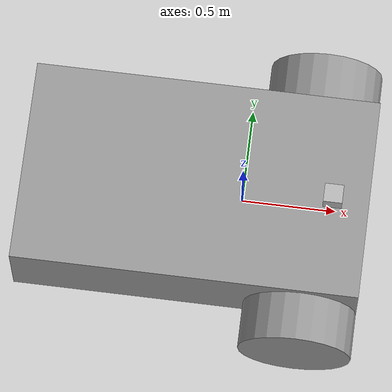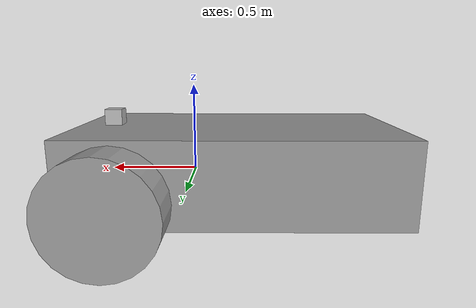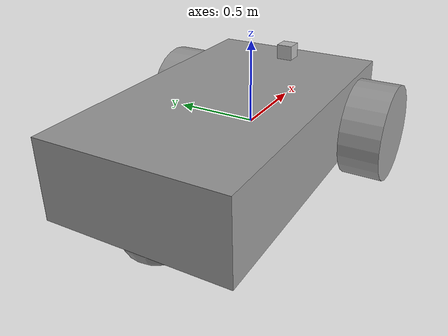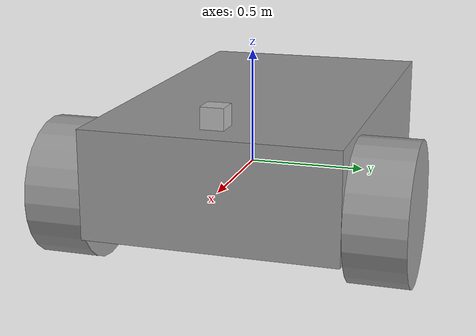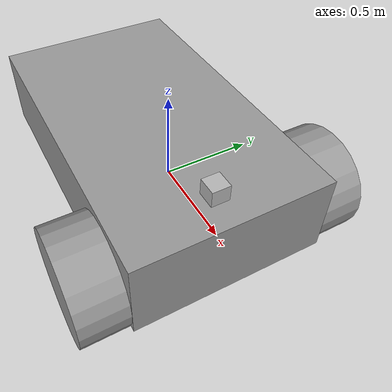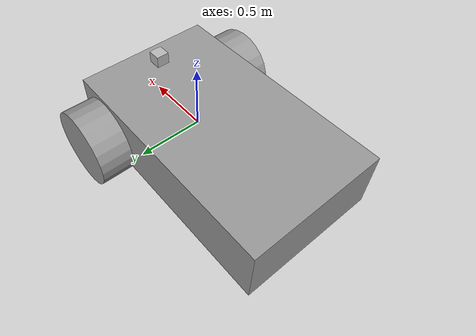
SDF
<?xml version='1.0'?>
<sdf version='1.6'>
  <model name='my_vehicle'>
    <link name='link_2'>
      <pose frame=''>-0.248353 0.003568 0.032739 0 -0 0</pose>
      <inertial>
        <mass>0.926489</mass>
        <inertia>
          <ixx>0.106912</ixx>
          <ixy>0</ixy>
          <ixz>0</ixz>
          <iyy>0.276318</iyy>
          <iyz>0</iyz>
          <izz>0.34938</izz>
        </inertia>
        <pose frame=''>0 0 0 0 -0 0</pose>
      </inertial>
      <gravity>1</gravity>
      <self_collide>0</self_collide>
      <kinematic>0</kinematic>
      <visual name='visual'>
        <pose frame=''>0 0 0 0 -0 0</pose>
        <geometry>
          <box>
            <size>1.83294 1.0796 0.4682</size>
          </box>
        </geometry>
        <material>
          <lighting>1</lighting>
          <script>
            <uri>file://media/materials/scripts/gazebo.material</uri>
            <name>Gazebo/Grey</name>
          </script>
          <ambient>0.3 0.3 0.3 1</ambient>
          <diffuse>0.7 0.7 0.7 1</diffuse>
          <specular>0.01 0.01 0.01 1</specular>
          <emissive>0 0 0 1</emissive>
          <shader type='vertex'>
            <normal_map>__default__</normal_map>
          </shader>
        </material>
        <cast_shadows>1</cast_shadows>
        <transparency>0</transparency>
      </visual>
      <collision name='collision'>
        <laser_retro>0</laser_retro>
        <max_contacts>10</max_contacts>
        <pose frame=''>0 0 0 0 -0 0</pose>
        <geometry>
          <box>
            <size>1.83294 1.0796 0.4682</size>
          </box>
        </geometry>
        <surface>
          <friction>
            <ode>
              <mu>1</mu>
              <mu2>1</mu2>
              <fdir1>0 0 0</fdir1>
              <slip1>0</slip1>
              <slip2>0</slip2>
            </ode>
            <torsional>
              <coefficient>1</coefficient>
              <patch_radius>0</patch_radius>
              <surface_radius>0</surface_radius>
              <use_patch_radius>1</use_patch_radius>
              <ode>
                <slip>0</slip>
              </ode>
            </torsional>
          </friction>
          <bounce>
            <restitution_coefficient>0</restitution_coefficient>
            <threshold>1e+06</threshold>
          </bounce>
          <contact>
            <collide_without_contact>0</collide_without_contact>
            <collide_without_contact_bitmask>1</collide_without_contact_bitmask>
            <collide_bitmask>1</collide_bitmask>
            <ode>
              <soft_cfm>0</soft_cfm>
              <soft_erp>0.2</soft_erp>
              <kp>1e+13</kp>
              <kd>1</kd>
              <max_vel>0.01</max_vel>
              <min_depth>0</min_depth>
            </ode>
            <bullet>
              <split_impulse>1</split_impulse>
              <split_impulse_penetration_threshold>-0.01</split_impulse_penetration_threshold>
              <soft_cfm>0</soft_cfm>
              <soft_erp>0.2</soft_erp>
              <kp>1e+13</kp>
              <kd>1</kd>
            </bullet>
          </contact>
        </surface>
      </collision>
    </link>
    <link name='link_3'>
      <pose frame=''>0.368117 -0.66126 -0.067261 1.5707 -0 0</pose>
      <inertial>
        <mass>1</mass>
        <inertia>
          <ixx>0.145833</ixx>
          <ixy>0</ixy>
          <ixz>0</ixz>
          <iyy>0.145833</iyy>
          <iyz>0</iyz>
          <izz>0.125</izz>
        </inertia>
        <pose frame=''>0 0 0 0 -0 0</pose>
      </inertial>
      <gravity>1</gravity>
      <self_collide>0</self_collide>
      <kinematic>0</kinematic>
      <visual name='visual'>
        <pose frame=''>0 0 0 0 -0 0</pose>
        <geometry>
          <cylinder>
            <radius>0.3</radius>
            <length>0.25</length>
          </cylinder>
        </geometry>
        <material>
          <lighting>1</lighting>
          <script>
            <uri>file://media/materials/scripts/gazebo.material</uri>
            <name>Gazebo/Grey</name>
          </script>
          <ambient>0.3 0.3 0.3 1</ambient>
          <diffuse>0.7 0.7 0.7 1</diffuse>
          <specular>0.01 0.01 0.01 1</specular>
          <emissive>0 0 0 1</emissive>
          <shader type='vertex'>
            <normal_map>__default__</normal_map>
          </shader>
        </material>
        <cast_shadows>1</cast_shadows>
        <transparency>0</transparency>
      </visual>
      <collision name='collision'>
        <laser_retro>0</laser_retro>
        <max_contacts>10</max_contacts>
        <pose frame=''>0 0 0 0 -0 0</pose>
        <geometry>
          <cylinder>
            <radius>0.3</radius>
            <length>0.25</length>
          </cylinder>
        </geometry>
        <surface>
          <friction>
            <ode>
              <mu>1</mu>
              <mu2>1</mu2>
              <fdir1>0 0 0</fdir1>
              <slip1>0</slip1>
              <slip2>0</slip2>
            </ode>
            <torsional>
              <coefficient>1</coefficient>
              <patch_radius>0</patch_radius>
              <surface_radius>0</surface_radius>
              <use_patch_radius>1</use_patch_radius>
              <ode>
                <slip>0</slip>
              </ode>
            </torsional>
          </friction>
          <bounce>
            <restitution_coefficient>0</restitution_coefficient>
            <threshold>1e+06</threshold>
          </bounce>
          <contact>
            <collide_without_contact>0</collide_without_contact>
            <collide_without_contact_bitmask>1</collide_without_contact_bitmask>
            <collide_bitmask>1</collide_bitmask>
            <ode>
              <soft_cfm>0</soft_cfm>
              <soft_erp>0.2</soft_erp>
              <kp>1e+13</kp>
              <kd>1</kd>
              <max_vel>0.01</max_vel>
              <min_depth>0</min_depth>
            </ode>
            <bullet>
              <split_impulse>1</split_impulse>
              <split_impulse_penetration_threshold>-0.01</split_impulse_penetration_threshold>
              <soft_cfm>0</soft_cfm>
              <soft_erp>0.2</soft_erp>
              <kp>1e+13</kp>
              <kd>1</kd>
            </bullet>
          </contact>
        </surface>
      </collision>
    </link>
    <link name='link_3_clone'>
      <pose frame=''>0.368117 0.668396 -0.057261 1.5707 -0 0</pose>
      <inertial>
        <mass>1</mass>
        <inertia>
          <ixx>0.145833</ixx>
          <ixy>0</ixy>
          <ixz>0</ixz>
          <iyy>0.145833</iyy>
          <iyz>0</iyz>
          <izz>0.125</izz>
        </inertia>
        <pose frame=''>0 0 0 0 -0 0</pose>
      </inertial>
      <self_collide>0</self_collide>
      <kinematic>0</kinematic>
      <gravity>1</gravity>
      <visual name='visual'>
        <pose frame=''>0 0 0 0 -0 0</pose>
        <geometry>
          <cylinder>
            <radius>0.3</radius>
            <length>0.25</length>
          </cylinder>
        </geometry>
        <material>
          <lighting>1</lighting>
          <script>
            <uri>file://media/materials/scripts/gazebo.material</uri>
            <name>Gazebo/Grey</name>
          </script>
          <ambient>0.3 0.3 0.3 1</ambient>
          <diffuse>0.7 0.7 0.7 1</diffuse>
          <specular>0.01 0.01 0.01 1</specular>
          <emissive>0 0 0 1</emissive>
          <shader type='vertex'>
            <normal_map>__default__</normal_map>
          </shader>
        </material>
        <cast_shadows>1</cast_shadows>
        <transparency>0</transparency>
      </visual>
      <collision name='collision'>
        <laser_retro>0</laser_retro>
        <max_contacts>10</max_contacts>
        <pose frame=''>0 0 0 0 -0 0</pose>
        <geometry>
          <cylinder>
            <radius>0.3</radius>
            <length>0.25</length>
          </cylinder>
        </geometry>
        <surface>
          <friction>
            <ode>
              <mu>1</mu>
              <mu2>1</mu2>
              <fdir1>0 0 0</fdir1>
              <slip1>0</slip1>
              <slip2>0</slip2>
            </ode>
            <torsional>
              <coefficient>1</coefficient>
              <patch_radius>0</patch_radius>
              <surface_radius>0</surface_radius>
              <use_patch_radius>1</use_patch_radius>
              <ode>
                <slip>0</slip>
              </ode>
            </torsional>
          </friction>
          <bounce>
            <restitution_coefficient>0</restitution_coefficient>
            <threshold>1e+06</threshold>
          </bounce>
          <contact>
            <collide_without_contact>0</collide_without_contact>
            <collide_without_contact_bitmask>1</collide_without_contact_bitmask>
            <collide_bitmask>1</collide_bitmask>
            <ode>
              <soft_cfm>0</soft_cfm>
              <soft_erp>0.2</soft_erp>
              <kp>1e+13</kp>
              <kd>1</kd>
              <max_vel>0.01</max_vel>
              <min_depth>0</min_depth>
            </ode>
            <bullet>
              <split_impulse>1</split_impulse>
              <split_impulse_penetration_threshold>-0.01</split_impulse_penetration_threshold>
              <soft_cfm>0</soft_cfm>
              <soft_erp>0.2</soft_erp>
              <kp>1e+13</kp>
              <kd>1</kd>
            </bullet>
          </contact>
        </surface>
      </collision>
    </link>
    <link name='link_4'>
      <pose frame=''>-0.964823 0.003568 -0.167261 0 -0 0</pose>
      <inertial>
        <mass>1</mass>
        <inertia>
          <ixx>0.1</ixx>
          <ixy>0</ixy>
          <ixz>0</ixz>
          <iyy>0.1</iyy>
          <iyz>0</iyz>
          <izz>0.1</izz>
        </inertia>
        <pose frame=''>0 0 0 0 -0 0</pose>
      </inertial>
      <gravity>1</gravity>
      <self_collide>0</self_collide>
      <kinematic>0</kinematic>
      <visual name='visual'>
        <pose frame=''>0 0 0 0 -0 0</pose>
        <geometry>
          <sphere>
            <radius>0.2</radius>
          </sphere>
        </geometry>
        <material>
          <lighting>1</lighting>
          <script>
            <uri>file://media/materials/scripts/gazebo.material</uri>
            <name>Gazebo/Grey</name>
          </script>
          <ambient>0.3 0.3 0.3 1</ambient>
          <diffuse>0.7 0.7 0.7 1</diffuse>
          <specular>0.01 0.01 0.01 1</specular>
          <emissive>0 0 0 1</emissive>
          <shader type='vertex'>
            <normal_map>__default__</normal_map>
          </shader>
        </material>
        <cast_shadows>1</cast_shadows>
        <transparency>0</transparency>
      </visual>
      <collision name='collision'>
        <laser_retro>0</laser_retro>
        <max_contacts>10</max_contacts>
        <pose frame=''>0 0 0 0 -0 0</pose>
        <geometry>
          <sphere>
            <radius>0.2</radius>
          </sphere>
        </geometry>
        <surface>
          <friction>
            <ode>
              <mu>1</mu>
              <mu2>1</mu2>
              <fdir1>0 0 0</fdir1>
              <slip1>0</slip1>
              <slip2>0</slip2>
            </ode>
            <torsional>
              <coefficient>1</coefficient>
              <patch_radius>0</patch_radius>
              <surface_radius>0</surface_radius>
              <use_patch_radius>1</use_patch_radius>
              <ode>
                <slip>0</slip>
              </ode>
            </torsional>
          </friction>
          <bounce>
            <restitution_coefficient>0</restitution_coefficient>
            <threshold>1e+06</threshold>
          </bounce>
          <contact>
            <collide_without_contact>0</collide_without_contact>
            <collide_without_contact_bitmask>1</collide_without_contact_bitmask>
            <collide_bitmask>1</collide_bitmask>
            <ode>
              <soft_cfm>0</soft_cfm>
              <soft_erp>0.2</soft_erp>
              <kp>1e+13</kp>
              <kd>1</kd>
              <max_vel>0.01</max_vel>
              <min_depth>0</min_depth>
            </ode>
            <bullet>
              <split_impulse>1</split_impulse>
              <split_impulse_penetration_threshold>-0.01</split_impulse_penetration_threshold>
              <soft_cfm>0</soft_cfm>
              <soft_erp>0.2</soft_erp>
              <kp>1e+13</kp>
              <kd>1</kd>
            </bullet>
          </contact>
        </surface>
      </collision>
    </link>
    <model name='depth_camera'>
      <link name='link'>
        <pose frame=''>0 0 0.05 0 -0 0</pose>
        <inertial>
          <mass>0.1</mass>
          <inertia>
            <ixx>0.000166667</ixx>
            <iyy>0.000166667</iyy>
            <izz>0.000166667</izz>
            <ixy>0</ixy>
            <ixz>0</ixz>
            <iyz>0</iyz>
          </inertia>
        </inertial>
        <collision name='collision'>
          <geometry>
            <box>
              <size>0.1 0.1 0.1</size>
            </box>
          </geometry>
        </collision>
        <visual name='visual'>
          <geometry>
            <box>
              <size>0.1 0.1 0.1</size>
            </box>
          </geometry>
        </visual>
        <sensor name='camera' type='depth'>
          <camera name='__default__'>
            <horizontal_fov>1.047</horizontal_fov>
            <image>
              <width>320</width>
              <height>240</height>
            </image>
            <clip>
              <near>0.1</near>
              <far>100</far>
            </clip>
          </camera>
          <always_on>1</always_on>
          <update_rate>30</update_rate>
          <visualize>1</visualize>
        </sensor>
      </link>
      <pose frame=''>0.476943 -0.014272 0.259042 0 -0 0</pose>
    </model>
    <joint name='link_2_JOINT_0' type='revolute'>
      <parent>link_2</parent>
      <child>link_3_clone</child>
      <pose frame=''>0 0 0 0 -0 0</pose>
      <axis>
        <xyz>0 0 1</xyz>
        <use_parent_model_frame>0</use_parent_model_frame>
        <limit>
          <lower>-1.79769e+308</lower>
          <upper>1.79769e+308</upper>
          <effort>-1</effort>
          <velocity>-1</velocity>
        </limit>
        <dynamics>
          <spring_reference>0</spring_reference>
          <spring_stiffness>0</spring_stiffness>
          <damping>0</damping>
        </dynamics>
      </axis>
      <physics>
        <ode>
          <limit>
            <cfm>0</cfm>
            <erp>0.2</erp>
          </limit>
          <suspension>
            <cfm>0</cfm>
            <erp>0.2</erp>
          </suspension>
        </ode>
      </physics>
    </joint>
    <joint name='link_2_JOINT_1' type='revolute'>
      <parent>link_2</parent>
      <child>link_3</child>
      <pose frame=''>0 0 0 0 -0 0</pose>
      <axis>
        <xyz>0 0 1</xyz>
        <use_parent_model_frame>0</use_parent_model_frame>
        <limit>
          <lower>-1.79769e+308</lower>
          <upper>1.79769e+308</upper>
          <effort>-1</effort>
          <velocity>-1</velocity>
        </limit>
        <dynamics>
          <spring_reference>0</spring_reference>
          <spring_stiffness>0</spring_stiffness>
          <damping>0</damping>
        </dynamics>
      </axis>
      <physics>
        <ode>
          <limit>
            <cfm>0</cfm>
            <erp>0.2</erp>
          </limit>
          <suspension>
            <cfm>0</cfm>
            <erp>0.2</erp>
          </suspension>
        </ode>
      </physics>
    </joint>
    <joint name='link_2_JOINT_2' type='ball'>
      <parent>link_2</parent>
      <child>link_4</child>
      <pose frame=''>0 0 0 0 -0 0</pose>
      <physics>
        <ode>
          <limit>
            <cfm>0</cfm>
            <erp>0.2</erp>
          </limit>
          <suspension>
            <cfm>0</cfm>
            <erp>0.2</erp>
          </suspension>
        </ode>
      </physics>
    </joint>
    <static>0</static>
    <allow_auto_disable>1</allow_auto_disable>
    <plugin name='follower' filename='libFollowerPlugin.so'/>
  </model>
</sdf>
